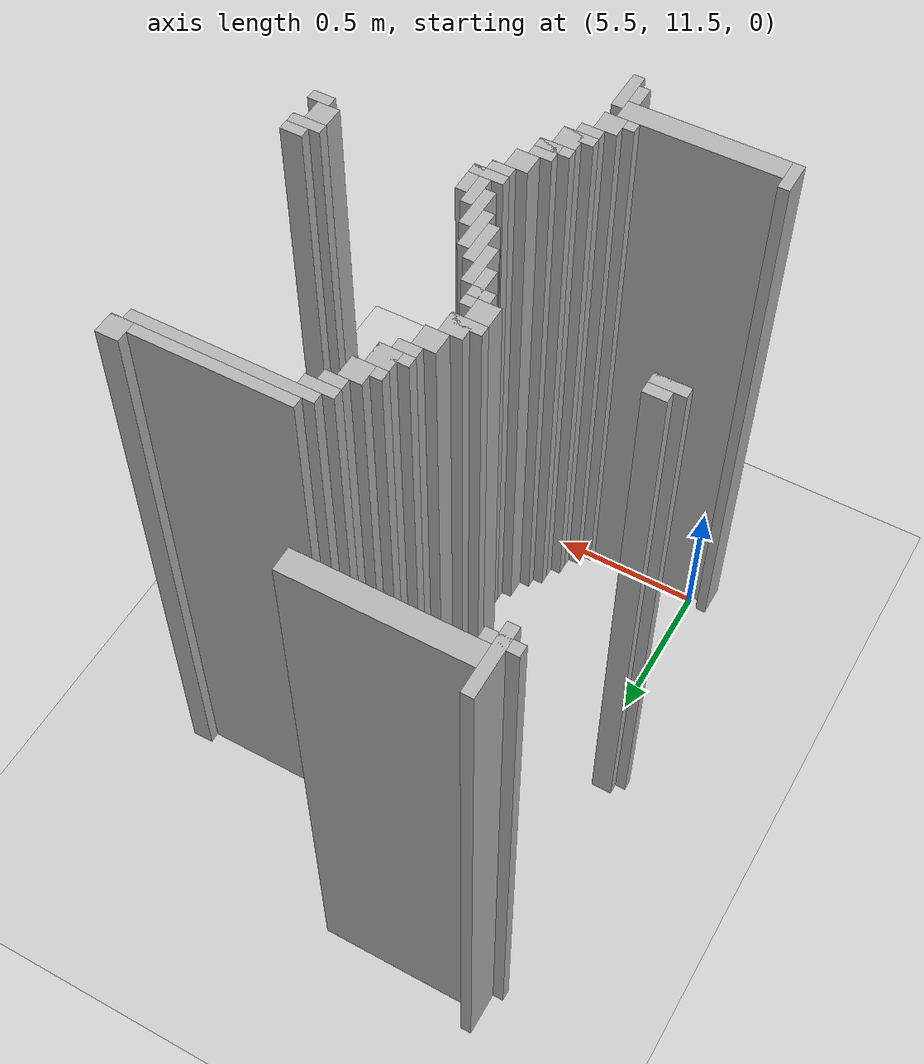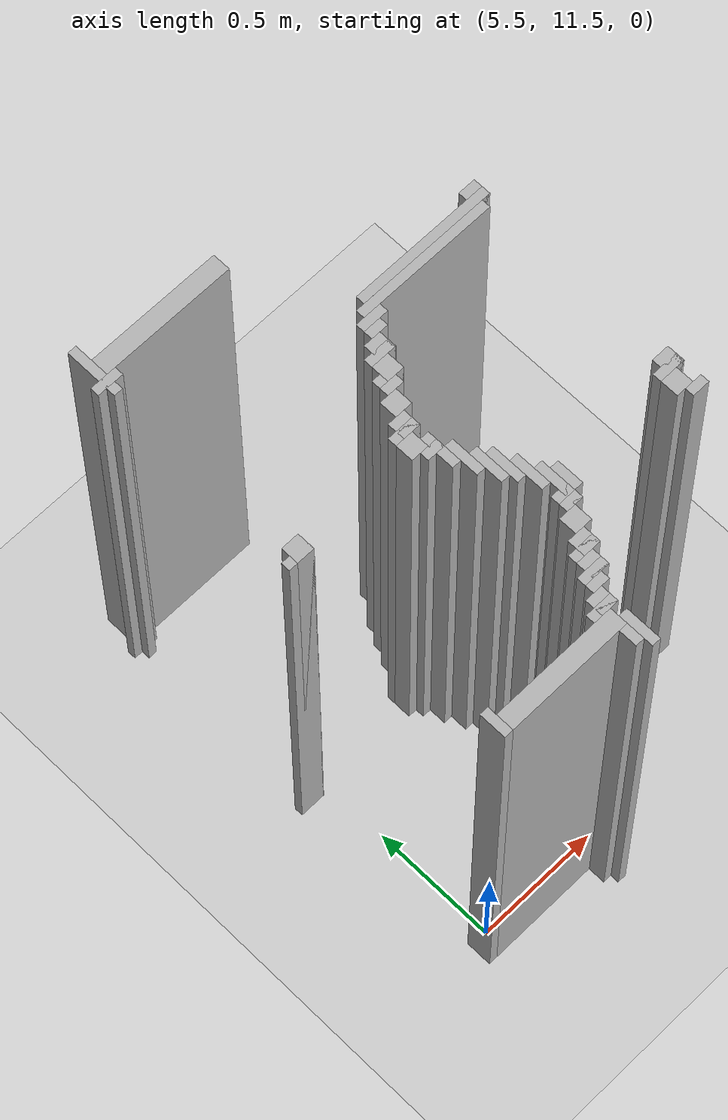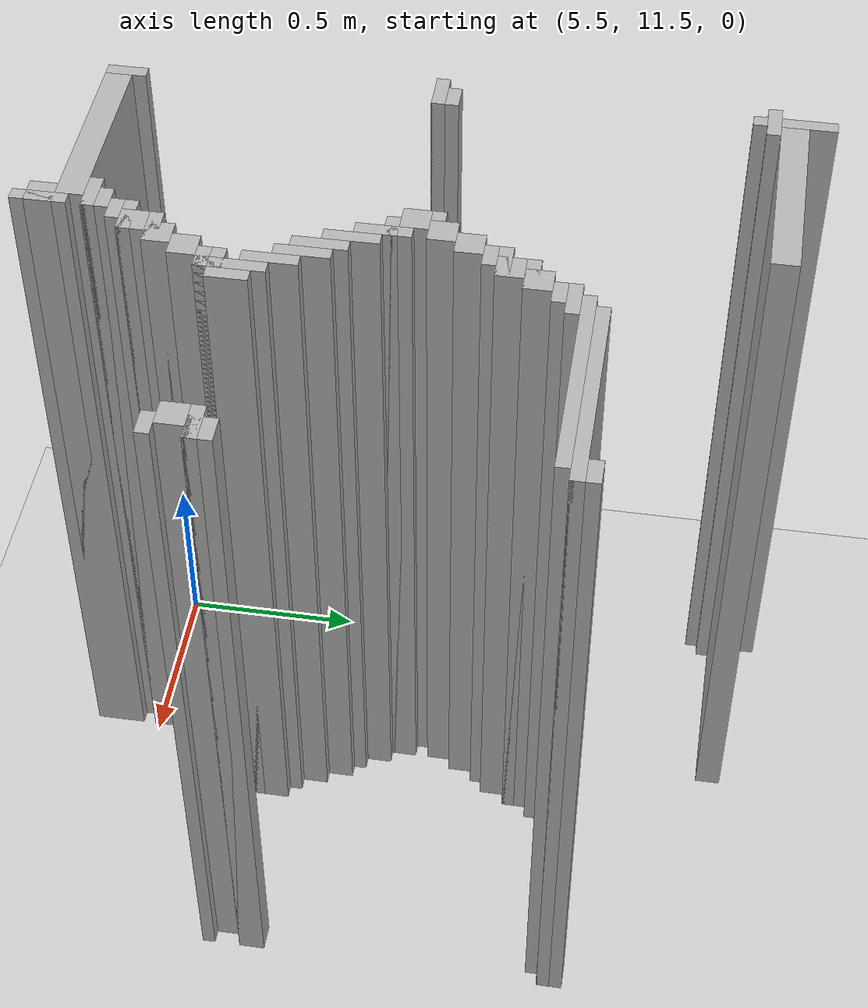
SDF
<sdf version="1.6">
 <world name="slam_world">
  <model name="ground_plane">
   <static>true</static>
   <link name="link">
    <collision name="collision">
     <geometry><plane><normal>0 0 1</normal><size>100 100</size></plane></geometry>
    </collision>
    <visual name="visual">
     <geometry><plane><normal>0 0 1</normal><size>100 100</size></plane></geometry>
     <material>
      <ambient>0.8 0.8 0.8 1</ambient>
      <diffuse>0.8 0.8 0.8 1</diffuse>
      <specular>0.8 0.8 0.8 1</specular>
     </material>
    </visual>
   </link>
  </model>
  <model name="wall_1387">
   <static>true</static>
   <pose>5.41183294663573 13.155452436194896 1.0 0 0 0</pose>
   <link name="link">
    <collision name="collision">
     <geometry><box><size>0.03480278422273782 0.2088167053364269 2.0</size></box></geometry>
    </collision>
    <visual name="visual">
     <geometry><box><size>0.03480278422273782 0.2088167053364269 2.0</size></box></geometry>
     <material><ambient>0.5 0.5 0.5 1</ambient><diffuse>0.7 0.7 0.7 1</diffuse></material>
    </visual>
   </link>
  </model>
  <model name="wall_1408">
   <static>true</static>
   <pose>5.690255220417633 13.155452436194896 1.0 0 0 0</pose>
   <link name="link">
    <collision name="collision">
     <geometry><box><size>0.5220417633410672 0.06960556844547564 2.0</size></box></geometry>
    </collision>
    <visual name="visual">
     <geometry><box><size>0.5220417633410672 0.06960556844547564 2.0</size></box></geometry>
     <material><ambient>0.5 0.5 0.5 1</ambient><diffuse>0.7 0.7 0.7 1</diffuse></material>
    </visual>
   </link>
  </model>
  <model name="wall_1431">
   <static>true</static>
   <pose>5.41183294663573 13.103248259860788 1.0 0 0 0</pose>
   <link name="link">
    <collision name="collision">
     <geometry><box><size>0.10440835266821345 0.03480278422273782 2.0</size></box></geometry>
    </collision>
    <visual name="visual">
     <geometry><box><size>0.10440835266821345 0.03480278422273782 2.0</size></box></geometry>
     <material><ambient>0.5 0.5 0.5 1</ambient><diffuse>0.7 0.7 0.7 1</diffuse></material>
    </visual>
   </link>
  </model>
  <model name="wall_1556">
   <static>true</static>
   <pose>6.682134570765661 12.772621809744779 1.0 0 0 0</pose>
   <link name="link">
    <collision name="collision">
     <geometry><box><size>0.06960556844547564 0.06960556844547564 2.0</size></box></geometry>
    </collision>
    <visual name="visual">
     <geometry><box><size>0.06960556844547564 0.06960556844547564 2.0</size></box></geometry>
     <material><ambient>0.5 0.5 0.5 1</ambient><diffuse>0.7 0.7 0.7 1</diffuse></material>
    </visual>
   </link>
  </model>
  <model name="wall_1567">
   <static>true</static>
   <pose>6.438515081206496 12.75522041763341 1.0 0 0 0</pose>
   <link name="link">
    <collision name="collision">
     <geometry><box><size>0.5568445475638051 0.03480278422273782 2.0</size></box></geometry>
    </collision>
    <visual name="visual">
     <geometry><box><size>0.5568445475638051 0.03480278422273782 2.0</size></box></geometry>
     <material><ambient>0.5 0.5 0.5 1</ambient><diffuse>0.7 0.7 0.7 1</diffuse></material>
    </visual>
   </link>
  </model>
  <model name="wall_1579">
   <static>true</static>
   <pose>6.403712296983758 12.720417633410673 1.0 0 0 0</pose>
   <link name="link">
    <collision name="collision">
     <geometry><box><size>0.5568445475638051 0.03480278422273782 2.0</size></box></geometry>
    </collision>
    <visual name="visual">
     <geometry><box><size>0.5568445475638051 0.03480278422273782 2.0</size></box></geometry>
     <material><ambient>0.5 0.5 0.5 1</ambient><diffuse>0.7 0.7 0.7 1</diffuse></material>
    </visual>
   </link>
  </model>
  <model name="wall_1590">
   <static>true</static>
   <pose>6.142691415313225 12.685614849187935 1.0 0 0 0</pose>
   <link name="link">
    <collision name="collision">
     <geometry><box><size>0.10440835266821345 0.03480278422273782 2.0</size></box></geometry>
    </collision>
    <visual name="visual">
     <geometry><box><size>0.10440835266821345 0.03480278422273782 2.0</size></box></geometry>
     <material><ambient>0.5 0.5 0.5 1</ambient><diffuse>0.7 0.7 0.7 1</diffuse></material>
    </visual>
   </link>
  </model>
  <model name="wall_1603">
   <static>true</static>
   <pose>6.125290023201856 12.650812064965196 1.0 0 0 0</pose>
   <link name="link">
    <collision name="collision">
     <geometry><box><size>0.06960556844547564 0.03480278422273782 2.0</size></box></geometry>
    </collision>
    <visual name="visual">
     <geometry><box><size>0.06960556844547564 0.03480278422273782 2.0</size></box></geometry>
     <material><ambient>0.5 0.5 0.5 1</ambient><diffuse>0.7 0.7 0.7 1</diffuse></material>
    </visual>
   </link>
  </model>
  <model name="wall_1614">
   <static>true</static>
   <pose>6.090487238979118 12.59860788863109 1.0 0 0 0</pose>
   <link name="link">
    <collision name="collision">
     <geometry><box><size>0.06960556844547564 0.06960556844547564 2.0</size></box></geometry>
    </collision>
    <visual name="visual">
     <geometry><box><size>0.06960556844547564 0.06960556844547564 2.0</size></box></geometry>
     <material><ambient>0.5 0.5 0.5 1</ambient><diffuse>0.7 0.7 0.7 1</diffuse></material>
    </visual>
   </link>
  </model>
  <model name="wall_1627">
   <static>true</static>
   <pose>6.073085846867749 12.581206496519721 1.0 0 0 0</pose>
   <link name="link">
    <collision name="collision">
     <geometry><box><size>0.10440835266821345 0.03480278422273782 2.0</size></box></geometry>
    </collision>
    <visual name="visual">
     <geometry><box><size>0.10440835266821345 0.03480278422273782 2.0</size></box></geometry>
     <material><ambient>0.5 0.5 0.5 1</ambient><diffuse>0.7 0.7 0.7 1</diffuse></material>
    </visual>
   </link>
  </model>
  <model name="wall_1639">
   <static>true</static>
   <pose>6.05568445475638 12.529002320185615 1.0 0 0 0</pose>
   <link name="link">
    <collision name="collision">
     <geometry><box><size>0.06960556844547564 0.06960556844547564 2.0</size></box></geometry>
    </collision>
    <visual name="visual">
     <geometry><box><size>0.06960556844547564 0.06960556844547564 2.0</size></box></geometry>
     <material><ambient>0.5 0.5 0.5 1</ambient><diffuse>0.7 0.7 0.7 1</diffuse></material>
    </visual>
   </link>
  </model>
  <model name="wall_1651">
   <static>true</static>
   <pose>6.038283062645012 12.511600928074245 1.0 0 0 0</pose>
   <link name="link">
    <collision name="collision">
     <geometry><box><size>0.10440835266821345 0.03480278422273782 2.0</size></box></geometry>
    </collision>
    <visual name="visual">
     <geometry><box><size>0.10440835266821345 0.03480278422273782 2.0</size></box></geometry>
     <material><ambient>0.5 0.5 0.5 1</ambient><diffuse>0.7 0.7 0.7 1</diffuse></material>
    </visual>
   </link>
  </model>
  <model name="wall_1662">
   <static>true</static>
   <pose>6.020881670533642 12.476798143851507 1.0 0 0 0</pose>
   <link name="link">
    <collision name="collision">
     <geometry><box><size>0.06960556844547564 0.03480278422273782 2.0</size></box></geometry>
    </collision>
    <visual name="visual">
     <geometry><box><size>0.06960556844547564 0.03480278422273782 2.0</size></box></geometry>
     <material><ambient>0.5 0.5 0.5 1</ambient><diffuse>0.7 0.7 0.7 1</diffuse></material>
    </visual>
   </link>
  </model>
  <model name="wall_1672">
   <static>true</static>
   <pose>5.986078886310905 12.424593967517401 1.0 0 0 0</pose>
   <link name="link">
    <collision name="collision">
     <geometry><box><size>0.06960556844547564 0.06960556844547564 2.0</size></box></geometry>
    </collision>
    <visual name="visual">
     <geometry><box><size>0.06960556844547564 0.06960556844547564 2.0</size></box></geometry>
     <material><ambient>0.5 0.5 0.5 1</ambient><diffuse>0.7 0.7 0.7 1</diffuse></material>
    </visual>
   </link>
  </model>
  <model name="wall_1685">
   <static>true</static>
   <pose>5.951276102088166 12.354988399071924 1.0 0 0 0</pose>
   <link name="link">
    <collision name="collision">
     <geometry><box><size>0.06960556844547564 0.06960556844547564 2.0</size></box></geometry>
    </collision>
    <visual name="visual">
     <geometry><box><size>0.06960556844547564 0.06960556844547564 2.0</size></box></geometry>
     <material><ambient>0.5 0.5 0.5 1</ambient><diffuse>0.7 0.7 0.7 1</diffuse></material>
    </visual>
   </link>
  </model>
  <model name="wall_1698">
   <static>true</static>
   <pose>5.933874709976798 12.337587006960556 1.0 0 0 0</pose>
   <link name="link">
    <collision name="collision">
     <geometry><box><size>0.10440835266821345 0.03480278422273782 2.0</size></box></geometry>
    </collision>
    <visual name="visual">
     <geometry><box><size>0.10440835266821345 0.03480278422273782 2.0</size></box></geometry>
     <material><ambient>0.5 0.5 0.5 1</ambient><diffuse>0.7 0.7 0.7 1</diffuse></material>
    </visual>
   </link>
  </model>
  <model name="wall_1709">
   <static>true</static>
   <pose>5.4292343387471 12.28538283062645 1.0 0 0 0</pose>
   <link name="link">
    <collision name="collision">
     <geometry><box><size>0.06960556844547564 0.06960556844547564 2.0</size></box></geometry>
    </collision>
    <visual name="visual">
     <geometry><box><size>0.06960556844547564 0.06960556844547564 2.0</size></box></geometry>
     <material><ambient>0.5 0.5 0.5 1</ambient><diffuse>0.7 0.7 0.7 1</diffuse></material>
    </visual>
   </link>
  </model>
  <model name="wall_1710">
   <static>true</static>
   <pose>5.916473317865429 12.28538283062645 1.0 0 0 0</pose>
   <link name="link">
    <collision name="collision">
     <geometry><box><size>0.06960556844547564 0.06960556844547564 2.0</size></box></geometry>
    </collision>
    <visual name="visual">
     <geometry><box><size>0.06960556844547564 0.06960556844547564 2.0</size></box></geometry>
     <material><ambient>0.5 0.5 0.5 1</ambient><diffuse>0.7 0.7 0.7 1</diffuse></material>
    </visual>
   </link>
  </model>
  <model name="wall_1723">
   <static>true</static>
   <pose>5.41183294663573 12.267981438515081 1.0 0 0 0</pose>
   <link name="link">
    <collision name="collision">
     <geometry><box><size>0.10440835266821345 0.03480278422273782 2.0</size></box></geometry>
    </collision>
    <visual name="visual">
     <geometry><box><size>0.10440835266821345 0.03480278422273782 2.0</size></box></geometry>
     <material><ambient>0.5 0.5 0.5 1</ambient><diffuse>0.7 0.7 0.7 1</diffuse></material>
    </visual>
   </link>
  </model>
  <model name="wall_1724">
   <static>true</static>
   <pose>5.968677494199536 12.215777262180975 1.0 0 0 0</pose>
   <link name="link">
    <collision name="collision">
     <geometry><box><size>0.03480278422273782 0.13921113689095127 2.0</size></box></geometry>
    </collision>
    <visual name="visual">
     <geometry><box><size>0.03480278422273782 0.13921113689095127 2.0</size></box></geometry>
     <material><ambient>0.5 0.5 0.5 1</ambient><diffuse>0.7 0.7 0.7 1</diffuse></material>
    </visual>
   </link>
  </model>
  <model name="wall_1743">
   <static>true</static>
   <pose>5.951276102088166 12.233178654292344 1.0 0 0 0</pose>
   <link name="link">
    <collision name="collision">
     <geometry><box><size>0.06960556844547564 0.03480278422273782 2.0</size></box></geometry>
    </collision>
    <visual name="visual">
     <geometry><box><size>0.06960556844547564 0.03480278422273782 2.0</size></box></geometry>
     <material><ambient>0.5 0.5 0.5 1</ambient><diffuse>0.7 0.7 0.7 1</diffuse></material>
    </visual>
   </link>
  </model>
  <model name="wall_1759">
   <static>true</static>
   <pose>6.003480278422273 12.146171693735498 1.0 0 0 0</pose>
   <link name="link">
    <collision name="collision">
     <geometry><box><size>0.03480278422273782 0.13921113689095127 2.0</size></box></geometry>
    </collision>
    <visual name="visual">
     <geometry><box><size>0.03480278422273782 0.13921113689095127 2.0</size></box></geometry>
     <material><ambient>0.5 0.5 0.5 1</ambient><diffuse>0.7 0.7 0.7 1</diffuse></material>
    </visual>
   </link>
  </model>
  <model name="wall_1775">
   <static>true</static>
   <pose>6.038283062645012 12.076566125290023 1.0 0 0 0</pose>
   <link name="link">
    <collision name="collision">
     <geometry><box><size>0.03480278422273782 0.13921113689095127 2.0</size></box></geometry>
    </collision>
    <visual name="visual">
     <geometry><box><size>0.03480278422273782 0.13921113689095127 2.0</size></box></geometry>
     <material><ambient>0.5 0.5 0.5 1</ambient><diffuse>0.7 0.7 0.7 1</diffuse></material>
    </visual>
   </link>
  </model>
  <model name="wall_1791">
   <static>true</static>
   <pose>6.073085846867749 12.041763341067284 1.0 0 0 0</pose>
   <link name="link">
    <collision name="collision">
     <geometry><box><size>0.03480278422273782 0.13921113689095127 2.0</size></box></geometry>
    </collision>
    <visual name="visual">
     <geometry><box><size>0.03480278422273782 0.13921113689095127 2.0</size></box></geometry>
     <material><ambient>0.5 0.5 0.5 1</ambient><diffuse>0.7 0.7 0.7 1</diffuse></material>
    </visual>
   </link>
  </model>
  <model name="wall_1817">
   <static>true</static>
   <pose>6.107888631090487 11.97215777262181 1.0 0 0 0</pose>
   <link name="link">
    <collision name="collision">
     <geometry><box><size>0.03480278422273782 0.13921113689095127 2.0</size></box></geometry>
    </collision>
    <visual name="visual">
     <geometry><box><size>0.03480278422273782 0.13921113689095127 2.0</size></box></geometry>
     <material><ambient>0.5 0.5 0.5 1</ambient><diffuse>0.7 0.7 0.7 1</diffuse></material>
    </visual>
   </link>
  </model>
  <model name="wall_1840">
   <static>true</static>
   <pose>6.142691415313225 11.885150812064964 1.0 0 0 0</pose>
   <link name="link">
    <collision name="collision">
     <geometry><box><size>0.03480278422273782 0.17401392111368907 2.0</size></box></geometry>
    </collision>
    <visual name="visual">
     <geometry><box><size>0.03480278422273782 0.17401392111368907 2.0</size></box></geometry>
     <material><ambient>0.5 0.5 0.5 1</ambient><diffuse>0.7 0.7 0.7 1</diffuse></material>
    </visual>
   </link>
  </model>
  <model name="wall_1841">
   <static>true</static>
   <pose>6.682134570765661 11.937354988399072 1.0 0 0 0</pose>
   <link name="link">
    <collision name="collision">
     <geometry><box><size>0.06960556844547564 0.06960556844547564 2.0</size></box></geometry>
    </collision>
    <visual name="visual">
     <geometry><box><size>0.06960556844547564 0.06960556844547564 2.0</size></box></geometry>
     <material><ambient>0.5 0.5 0.5 1</ambient><diffuse>0.7 0.7 0.7 1</diffuse></material>
    </visual>
   </link>
  </model>
  <model name="wall_1856">
   <static>true</static>
   <pose>6.177494199535962 11.885150812064964 1.0 0 0 0</pose>
   <link name="link">
    <collision name="collision">
     <geometry><box><size>0.03480278422273782 0.10440835266821345 2.0</size></box></geometry>
    </collision>
    <visual name="visual">
     <geometry><box><size>0.03480278422273782 0.10440835266821345 2.0</size></box></geometry>
     <material><ambient>0.5 0.5 0.5 1</ambient><diffuse>0.7 0.7 0.7 1</diffuse></material>
    </visual>
   </link>
  </model>
  <model name="wall_1857">
   <static>true</static>
   <pose>6.664733178654292 11.919953596287703 1.0 0 0 0</pose>
   <link name="link">
    <collision name="collision">
     <geometry><box><size>0.10440835266821345 0.03480278422273782 2.0</size></box></geometry>
    </collision>
    <visual name="visual">
     <geometry><box><size>0.10440835266821345 0.03480278422273782 2.0</size></box></geometry>
     <material><ambient>0.5 0.5 0.5 1</ambient><diffuse>0.7 0.7 0.7 1</diffuse></material>
    </visual>
   </link>
  </model>
  <model name="wall_1869">
   <static>true</static>
   <pose>6.647331786542924 11.867749419953595 1.0 0 0 0</pose>
   <link name="link">
    <collision name="collision">
     <geometry><box><size>0.06960556844547564 0.06960556844547564 2.0</size></box></geometry>
    </collision>
    <visual name="visual">
     <geometry><box><size>0.06960556844547564 0.06960556844547564 2.0</size></box></geometry>
     <material><ambient>0.5 0.5 0.5 1</ambient><diffuse>0.7 0.7 0.7 1</diffuse></material>
    </visual>
   </link>
  </model>
  <model name="wall_1883">
   <static>true</static>
   <pose>6.142691415313225 11.850348027842227 1.0 0 0 0</pose>
   <link name="link">
    <collision name="collision">
     <geometry><box><size>0.10440835266821345 0.03480278422273782 2.0</size></box></geometry>
    </collision>
    <visual name="visual">
     <geometry><box><size>0.10440835266821345 0.03480278422273782 2.0</size></box></geometry>
     <material><ambient>0.5 0.5 0.5 1</ambient><diffuse>0.7 0.7 0.7 1</diffuse></material>
    </visual>
   </link>
  </model>
  <model name="wall_1899">
   <static>true</static>
   <pose>6.125290023201856 11.81554524361949 1.0 0 0 0</pose>
   <link name="link">
    <collision name="collision">
     <geometry><box><size>0.06960556844547564 0.03480278422273782 2.0</size></box></geometry>
    </collision>
    <visual name="visual">
     <geometry><box><size>0.06960556844547564 0.03480278422273782 2.0</size></box></geometry>
     <material><ambient>0.5 0.5 0.5 1</ambient><diffuse>0.7 0.7 0.7 1</diffuse></material>
    </visual>
   </link>
  </model>
  <model name="wall_1900">
   <static>true</static>
   <pose>6.682134570765661 11.81554524361949 1.0 0 0 0</pose>
   <link name="link">
    <collision name="collision">
     <geometry><box><size>0.06960556844547564 0.03480278422273782 2.0</size></box></geometry>
    </collision>
    <visual name="visual">
     <geometry><box><size>0.06960556844547564 0.03480278422273782 2.0</size></box></geometry>
     <material><ambient>0.5 0.5 0.5 1</ambient><diffuse>0.7 0.7 0.7 1</diffuse></material>
    </visual>
   </link>
  </model>
  <model name="wall_1915">
   <static>true</static>
   <pose>6.090487238979118 11.763341067285383 1.0 0 0 0</pose>
   <link name="link">
    <collision name="collision">
     <geometry><box><size>0.06960556844547564 0.06960556844547564 2.0</size></box></geometry>
    </collision>
    <visual name="visual">
     <geometry><box><size>0.06960556844547564 0.06960556844547564 2.0</size></box></geometry>
     <material><ambient>0.5 0.5 0.5 1</ambient><diffuse>0.7 0.7 0.7 1</diffuse></material>
    </visual>
   </link>
  </model>
  <model name="wall_1931">
   <static>true</static>
   <pose>6.05568445475638 11.693735498839906 1.0 0 0 0</pose>
   <link name="link">
    <collision name="collision">
     <geometry><box><size>0.06960556844547564 0.06960556844547564 2.0</size></box></geometry>
    </collision>
    <visual name="visual">
     <geometry><box><size>0.06960556844547564 0.06960556844547564 2.0</size></box></geometry>
     <material><ambient>0.5 0.5 0.5 1</ambient><diffuse>0.7 0.7 0.7 1</diffuse></material>
    </visual>
   </link>
  </model>
  <model name="wall_1947">
   <static>true</static>
   <pose>6.038283062645012 11.676334106728538 1.0 0 0 0</pose>
   <link name="link">
    <collision name="collision">
     <geometry><box><size>0.10440835266821345 0.03480278422273782 2.0</size></box></geometry>
    </collision>
    <visual name="visual">
     <geometry><box><size>0.10440835266821345 0.03480278422273782 2.0</size></box></geometry>
     <material><ambient>0.5 0.5 0.5 1</ambient><diffuse>0.7 0.7 0.7 1</diffuse></material>
    </visual>
   </link>
  </model>
  <model name="wall_1960">
   <static>true</static>
   <pose>6.020881670533642 11.624129930394432 1.0 0 0 0</pose>
   <link name="link">
    <collision name="collision">
     <geometry><box><size>0.06960556844547564 0.06960556844547564 2.0</size></box></geometry>
    </collision>
    <visual name="visual">
     <geometry><box><size>0.06960556844547564 0.06960556844547564 2.0</size></box></geometry>
     <material><ambient>0.5 0.5 0.5 1</ambient><diffuse>0.7 0.7 0.7 1</diffuse></material>
    </visual>
   </link>
  </model>
  <model name="wall_1972">
   <static>true</static>
   <pose>6.003480278422273 11.606728538283063 1.0 0 0 0</pose>
   <link name="link">
    <collision name="collision">
     <geometry><box><size>0.10440835266821345 0.03480278422273782 2.0</size></box></geometry>
    </collision>
    <visual name="visual">
     <geometry><box><size>0.10440835266821345 0.03480278422273782 2.0</size></box></geometry>
     <material><ambient>0.5 0.5 0.5 1</ambient><diffuse>0.7 0.7 0.7 1</diffuse></material>
    </visual>
   </link>
  </model>
  <model name="wall_1985">
   <static>true</static>
   <pose>5.986078886310905 11.571925754060324 1.0 0 0 0</pose>
   <link name="link">
    <collision name="collision">
     <geometry><box><size>0.06960556844547564 0.03480278422273782 2.0</size></box></geometry>
    </collision>
    <visual name="visual">
     <geometry><box><size>0.06960556844547564 0.03480278422273782 2.0</size></box></geometry>
     <material><ambient>0.5 0.5 0.5 1</ambient><diffuse>0.7 0.7 0.7 1</diffuse></material>
    </visual>
   </link>
  </model>
  <model name="wall_1997">
   <static>true</static>
   <pose>5.951276102088166 11.519721577726218 1.0 0 0 0</pose>
   <link name="link">
    <collision name="collision">
     <geometry><box><size>0.06960556844547564 0.06960556844547564 2.0</size></box></geometry>
    </collision>
    <visual name="visual">
     <geometry><box><size>0.06960556844547564 0.06960556844547564 2.0</size></box></geometry>
     <material><ambient>0.5 0.5 0.5 1</ambient><diffuse>0.7 0.7 0.7 1</diffuse></material>
    </visual>
   </link>
  </model>
  <model name="wall_2011">
   <static>true</static>
   <pose>5.4466357308584685 11.467517401392112 1.0 0 0 0</pose>
   <link name="link">
    <collision name="collision">
     <geometry><box><size>0.03480278422273782 0.10440835266821345 2.0</size></box></geometry>
    </collision>
    <visual name="visual">
     <geometry><box><size>0.03480278422273782 0.10440835266821345 2.0</size></box></geometry>
     <material><ambient>0.5 0.5 0.5 1</ambient><diffuse>0.7 0.7 0.7 1</diffuse></material>
    </visual>
   </link>
  </model>
  <model name="wall_2012">
   <static>true</static>
   <pose>5.933874709976798 11.502320185614849 1.0 0 0 0</pose>
   <link name="link">
    <collision name="collision">
     <geometry><box><size>0.10440835266821345 0.03480278422273782 2.0</size></box></geometry>
    </collision>
    <visual name="visual">
     <geometry><box><size>0.10440835266821345 0.03480278422273782 2.0</size></box></geometry>
     <material><ambient>0.5 0.5 0.5 1</ambient><diffuse>0.7 0.7 0.7 1</diffuse></material>
    </visual>
   </link>
  </model>
  <model name="wall_2026">
   <static>true</static>
   <pose>5.707656612529002 11.450116009280743 1.0 0 0 0</pose>
   <link name="link">
    <collision name="collision">
     <geometry><box><size>0.4872389791183295 0.06960556844547564 2.0</size></box></geometry>
    </collision>
    <visual name="visual">
     <geometry><box><size>0.4872389791183295 0.06960556844547564 2.0</size></box></geometry>
     <material><ambient>0.5 0.5 0.5 1</ambient><diffuse>0.7 0.7 0.7 1</diffuse></material>
    </visual>
   </link>
  </model>
  <model name="wall_2039">
   <static>true</static>
   <pose>5.968677494199536 11.380510440835266 1.0 0 0 0</pose>
   <link name="link">
    <collision name="collision">
     <geometry><box><size>0.03480278422273782 0.13921113689095127 2.0</size></box></geometry>
    </collision>
    <visual name="visual">
     <geometry><box><size>0.03480278422273782 0.13921113689095127 2.0</size></box></geometry>
     <material><ambient>0.5 0.5 0.5 1</ambient><diffuse>0.7 0.7 0.7 1</diffuse></material>
    </visual>
   </link>
  </model>
  <model name="wall_2056">
   <static>true</static>
   <pose>5.951276102088166 11.380510440835266 1.0 0 0 0</pose>
   <link name="link">
    <collision name="collision">
     <geometry><box><size>0.06960556844547564 0.06960556844547564 2.0</size></box></geometry>
    </collision>
    <visual name="visual">
     <geometry><box><size>0.06960556844547564 0.06960556844547564 2.0</size></box></geometry>
     <material><ambient>0.5 0.5 0.5 1</ambient><diffuse>0.7 0.7 0.7 1</diffuse></material>
    </visual>
   </link>
  </model>
 </world>
</sdf>
